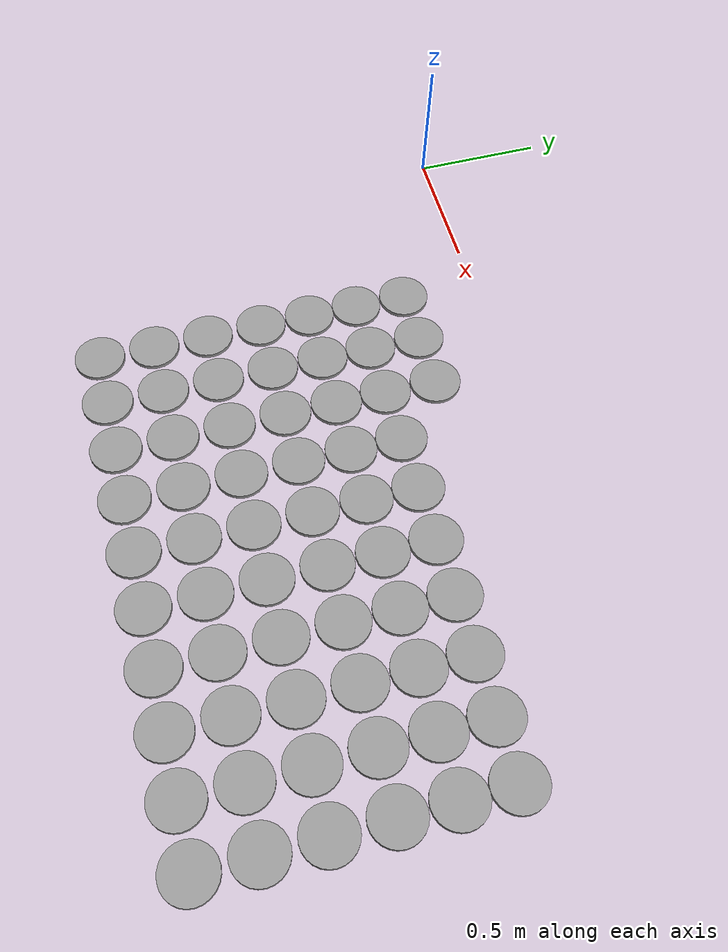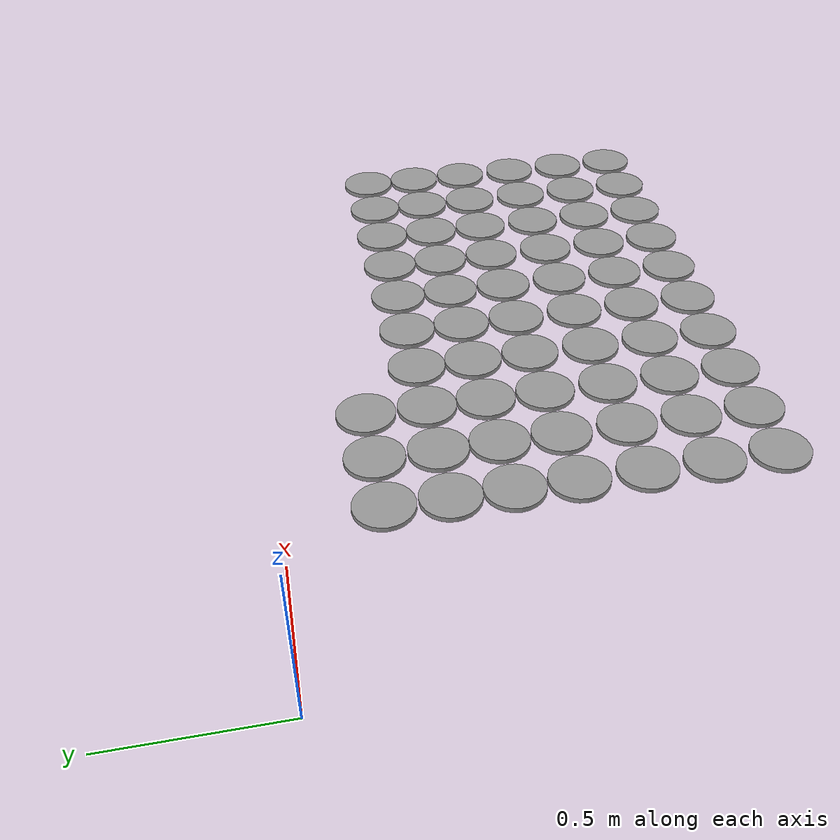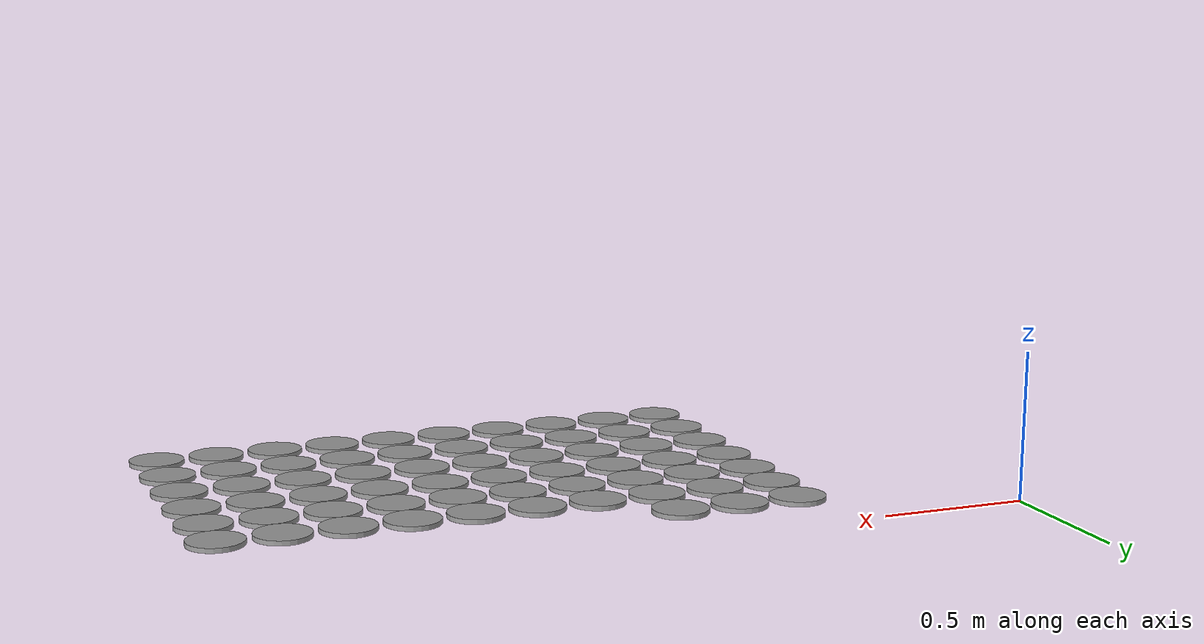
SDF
<sdf version="1.6">
 <world name="default">
  <model name="unit_cylinder_clone_385">
   <pose>0.67 -0.484923 0.008111 0 -0 0</pose>
   <link name="link">
    <inertial>
     <mass>1</mass>
     <inertia><ixx>0.145833</ixx><ixy>0</ixy><ixz>0</ixz><iyy>0.145833</iyy><iyz>0</iyz><izz>0.125</izz></inertia>
    </inertial>
    <collision name="collision">
     <geometry><cylinder><radius>0.0950718</radius><length>0.0162339</length></cylinder></geometry>
     <max_contacts>5</max_contacts>
    </collision>
    <visual name="visual">
     <geometry><cylinder><radius>0.0950718</radius><length>0.0162339</length></cylinder></geometry>
     <material>
      <script><name>Gazebo/Grey</name><uri>file://media/materials/scripts/gazebo.material</uri></script>
     </material>
    </visual>
   </link>
  </model>
  <model name="unit_cylinder_clone_386">
   <pose>0.67 -0.29 0.008111 0 -0 0</pose>
   <link name="link">
    <inertial>
     <mass>1</mass>
     <inertia><ixx>0.145833</ixx><ixy>0</ixy><ixz>0</ixz><iyy>0.145833</iyy><iyz>0</iyz><izz>0.125</izz></inertia>
    </inertial>
    <collision name="collision">
     <geometry><cylinder><radius>0.0950718</radius><length>0.0162339</length></cylinder></geometry>
     <max_contacts>5</max_contacts>
    </collision>
    <visual name="visual">
     <geometry><cylinder><radius>0.0950718</radius><length>0.0162339</length></cylinder></geometry>
     <material>
      <script><name>Gazebo/Grey</name><uri>file://media/materials/scripts/gazebo.material</uri></script>
     </material>
    </visual>
   </link>
  </model>
  <model name="unit_cylinder_clone_390">
   <pose>0.88 -0.484923 0.008111 0 -0 0</pose>
   <link name="link">
    <inertial>
     <mass>1</mass>
     <inertia><ixx>0.145833</ixx><ixy>0</ixy><ixz>0</ixz><iyy>0.145833</iyy><iyz>0</iyz><izz>0.125</izz></inertia>
    </inertial>
    <collision name="collision">
     <geometry><cylinder><radius>0.0950718</radius><length>0.0162339</length></cylinder></geometry>
     <max_contacts>5</max_contacts>
    </collision>
    <visual name="visual">
     <geometry><cylinder><radius>0.0950718</radius><length>0.0162339</length></cylinder></geometry>
     <material>
      <script><name>Gazebo/Grey</name><uri>file://media/materials/scripts/gazebo.material</uri></script>
     </material>
    </visual>
   </link>
  </model>
  <model name="unit_cylinder_clone_391">
   <pose>0.88 -0.29 0.008111 0 -0 0</pose>
   <link name="link">
    <inertial>
     <mass>1</mass>
     <inertia><ixx>0.145833</ixx><ixy>0</ixy><ixz>0</ixz><iyy>0.145833</iyy><iyz>0</iyz><izz>0.125</izz></inertia>
    </inertial>
    <collision name="collision">
     <geometry><cylinder><radius>0.0950718</radius><length>0.0162339</length></cylinder></geometry>
     <max_contacts>5</max_contacts>
    </collision>
    <visual name="visual">
     <geometry><cylinder><radius>0.0950718</radius><length>0.0162339</length></cylinder></geometry>
     <material>
      <script><name>Gazebo/Grey</name><uri>file://media/materials/scripts/gazebo.material</uri></script>
     </material>
    </visual>
   </link>
  </model>
  <model name="unit_cylinder_clone_395">
   <pose>1.09 -0.484923 0.008111 0 -0 0</pose>
   <link name="link">
    <inertial>
     <mass>1</mass>
     <inertia><ixx>0.145833</ixx><ixy>0</ixy><ixz>0</ixz><iyy>0.145833</iyy><iyz>0</iyz><izz>0.125</izz></inertia>
    </inertial>
    <collision name="collision">
     <geometry><cylinder><radius>0.0950718</radius><length>0.0162339</length></cylinder></geometry>
     <max_contacts>5</max_contacts>
    </collision>
    <visual name="visual">
     <geometry><cylinder><radius>0.0950718</radius><length>0.0162339</length></cylinder></geometry>
     <material>
      <script><name>Gazebo/Grey</name><uri>file://media/materials/scripts/gazebo.material</uri></script>
     </material>
    </visual>
   </link>
  </model>
  <model name="unit_cylinder_clone_396">
   <pose>1.09 -0.29 0.008111 0 -0 0</pose>
   <link name="link">
    <inertial>
     <mass>1</mass>
     <inertia><ixx>0.145833</ixx><ixy>0</ixy><ixz>0</ixz><iyy>0.145833</iyy><iyz>0</iyz><izz>0.125</izz></inertia>
    </inertial>
    <collision name="collision">
     <geometry><cylinder><radius>0.0950718</radius><length>0.0162339</length></cylinder></geometry>
     <max_contacts>5</max_contacts>
    </collision>
    <visual name="visual">
     <geometry><cylinder><radius>0.0950718</radius><length>0.0162339</length></cylinder></geometry>
     <material>
      <script><name>Gazebo/Grey</name><uri>file://media/materials/scripts/gazebo.material</uri></script>
     </material>
    </visual>
   </link>
  </model>
  <model name="unit_cylinder_clone_400">
   <pose>1.3 -0.484923 0.008111 0 -0 0</pose>
   <link name="link">
    <inertial>
     <mass>1</mass>
     <inertia><ixx>0.145833</ixx><ixy>0</ixy><ixz>0</ixz><iyy>0.145833</iyy><iyz>0</iyz><izz>0.125</izz></inertia>
    </inertial>
    <collision name="collision">
     <geometry><cylinder><radius>0.0950718</radius><length>0.0162339</length></cylinder></geometry>
     <max_contacts>5</max_contacts>
    </collision>
    <visual name="visual">
     <geometry><cylinder><radius>0.0950718</radius><length>0.0162339</length></cylinder></geometry>
     <material>
      <script><name>Gazebo/Grey</name><uri>file://media/materials/scripts/gazebo.material</uri></script>
     </material>
    </visual>
   </link>
  </model>
  <model name="unit_cylinder_clone_405">
   <pose>1.51 -0.484923 0.008111 0 -0 0</pose>
   <link name="link">
    <inertial>
     <mass>1</mass>
     <inertia><ixx>0.145833</ixx><ixy>0</ixy><ixz>0</ixz><iyy>0.145833</iyy><iyz>0</iyz><izz>0.125</izz></inertia>
    </inertial>
    <collision name="collision">
     <geometry><cylinder><radius>0.0950718</radius><length>0.0162339</length></cylinder></geometry>
     <max_contacts>5</max_contacts>
    </collision>
    <visual name="visual">
     <geometry><cylinder><radius>0.0950718</radius><length>0.0162339</length></cylinder></geometry>
     <material>
      <script><name>Gazebo/Grey</name><uri>file://media/materials/scripts/gazebo.material</uri></script>
     </material>
    </visual>
   </link>
  </model>
  <model name="unit_cylinder_clone_410">
   <pose>1.72 -0.484923 0.008111 0 -0 0</pose>
   <link name="link">
    <inertial>
     <mass>1</mass>
     <inertia><ixx>0.145833</ixx><ixy>0</ixy><ixz>0</ixz><iyy>0.145833</iyy><iyz>0</iyz><izz>0.125</izz></inertia>
    </inertial>
    <collision name="collision">
     <geometry><cylinder><radius>0.0950718</radius><length>0.0162339</length></cylinder></geometry>
     <max_contacts>5</max_contacts>
    </collision>
    <visual name="visual">
     <geometry><cylinder><radius>0.0950718</radius><length>0.0162339</length></cylinder></geometry>
     <material>
      <script><name>Gazebo/Grey</name><uri>file://media/materials/scripts/gazebo.material</uri></script>
     </material>
    </visual>
   </link>
  </model>
  <model name="unit_cylinder_clone_415">
   <pose>1.93 -0.484923 0.008111 0 -0 0</pose>
   <link name="link">
    <inertial>
     <mass>1</mass>
     <inertia><ixx>0.145833</ixx><ixy>0</ixy><ixz>0</ixz><iyy>0.145833</iyy><iyz>0</iyz><izz>0.125</izz></inertia>
    </inertial>
    <collision name="collision">
     <geometry><cylinder><radius>0.0950718</radius><length>0.0162339</length></cylinder></geometry>
     <max_contacts>5</max_contacts>
    </collision>
    <visual name="visual">
     <geometry><cylinder><radius>0.0950718</radius><length>0.0162339</length></cylinder></geometry>
     <material>
      <script><name>Gazebo/Grey</name><uri>file://media/materials/scripts/gazebo.material</uri></script>
     </material>
    </visual>
   </link>
  </model>
  <model name="unit_cylinder_clone_420">
   <pose>2.14 -0.484923 0.008111 0 -0 0</pose>
   <link name="link">
    <inertial>
     <mass>1</mass>
     <inertia><ixx>0.145833</ixx><ixy>0</ixy><ixz>0</ixz><iyy>0.145833</iyy><iyz>0</iyz><izz>0.125</izz></inertia>
    </inertial>
    <collision name="collision">
     <geometry><cylinder><radius>0.0950718</radius><length>0.0162339</length></cylinder></geometry>
     <max_contacts>5</max_contacts>
    </collision>
    <visual name="visual">
     <geometry><cylinder><radius>0.0950718</radius><length>0.0162339</length></cylinder></geometry>
     <material>
      <script><name>Gazebo/Grey</name><uri>file://media/materials/scripts/gazebo.material</uri></script>
     </material>
    </visual>
   </link>
  </model>
  <model name="unit_cylinder_clone_425">
   <pose>2.35 -0.484923 0.008111 0 -0 0</pose>
   <link name="link">
    <inertial>
     <mass>1</mass>
     <inertia><ixx>0.145833</ixx><ixy>0</ixy><ixz>0</ixz><iyy>0.145833</iyy><iyz>0</iyz><izz>0.125</izz></inertia>
    </inertial>
    <collision name="collision">
     <geometry><cylinder><radius>0.0950718</radius><length>0.0162339</length></cylinder></geometry>
     <max_contacts>5</max_contacts>
    </collision>
    <visual name="visual">
     <geometry><cylinder><radius>0.0950718</radius><length>0.0162339</length></cylinder></geometry>
     <material>
      <script><name>Gazebo/Grey</name><uri>file://media/materials/scripts/gazebo.material</uri></script>
     </material>
    </visual>
   </link>
  </model>
  <model name="unit_cylinder_clone_430">
   <pose>2.56 -0.484923 0.008111 0 -0 0</pose>
   <link name="link">
    <inertial>
     <mass>1</mass>
     <inertia><ixx>0.145833</ixx><ixy>0</ixy><ixz>0</ixz><iyy>0.145833</iyy><iyz>0</iyz><izz>0.125</izz></inertia>
    </inertial>
    <collision name="collision">
     <geometry><cylinder><radius>0.0950718</radius><length>0.0162339</length></cylinder></geometry>
     <max_contacts>5</max_contacts>
    </collision>
    <visual name="visual">
     <geometry><cylinder><radius>0.0950718</radius><length>0.0162339</length></cylinder></geometry>
     <material>
      <script><name>Gazebo/Grey</name><uri>file://media/materials/scripts/gazebo.material</uri></script>
     </material>
    </visual>
   </link>
  </model>
  <model name="unit_cylinder_clone_635">
   <pose>0.67 -1.5 0.008111 0 -0 0</pose>
   <link name="link">
    <inertial>
     <mass>1</mass>
     <inertia><ixx>0.145833</ixx><ixy>0</ixy><ixz>0</ixz><iyy>0.145833</iyy><iyz>0</iyz><izz>0.125</izz></inertia>
    </inertial>
    <collision name="collision">
     <geometry><cylinder><radius>0.0950718</radius><length>0.0162339</length></cylinder></geometry>
     <max_contacts>5</max_contacts>
    </collision>
    <visual name="visual">
     <geometry><cylinder><radius>0.0950718</radius><length>0.0162339</length></cylinder></geometry>
     <material>
      <script><name>Gazebo/Grey</name><uri>file://media/materials/scripts/gazebo.material</uri></script>
     </material>
    </visual>
   </link>
  </model>
  <model name="unit_cylinder_clone_636">
   <pose>0.67 -1.29 0.008111 0 -0 0</pose>
   <link name="link">
    <inertial>
     <mass>1</mass>
     <inertia><ixx>0.145833</ixx><ixy>0</ixy><ixz>0</ixz><iyy>0.145833</iyy><iyz>0</iyz><izz>0.125</izz></inertia>
    </inertial>
    <collision name="collision">
     <geometry><cylinder><radius>0.0950718</radius><length>0.0162339</length></cylinder></geometry>
     <max_contacts>5</max_contacts>
    </collision>
    <visual name="visual">
     <geometry><cylinder><radius>0.0950718</radius><length>0.0162339</length></cylinder></geometry>
     <material>
      <script><name>Gazebo/Grey</name><uri>file://media/materials/scripts/gazebo.material</uri></script>
     </material>
    </visual>
   </link>
  </model>
  <model name="unit_cylinder_clone_637">
   <pose>0.67 -1.08 0.008111 0 -0 0</pose>
   <link name="link">
    <inertial>
     <mass>1</mass>
     <inertia><ixx>0.145833</ixx><ixy>0</ixy><ixz>0</ixz><iyy>0.145833</iyy><iyz>0</iyz><izz>0.125</izz></inertia>
    </inertial>
    <collision name="collision">
     <geometry><cylinder><radius>0.0950718</radius><length>0.0162339</length></cylinder></geometry>
     <max_contacts>5</max_contacts>
    </collision>
    <visual name="visual">
     <geometry><cylinder><radius>0.0950718</radius><length>0.0162339</length></cylinder></geometry>
     <material>
      <script><name>Gazebo/Grey</name><uri>file://media/materials/scripts/gazebo.material</uri></script>
     </material>
    </visual>
   </link>
  </model>
  <model name="unit_cylinder_clone_638">
   <pose>0.67 -0.87 0.008111 0 -0 0</pose>
   <link name="link">
    <inertial>
     <mass>1</mass>
     <inertia><ixx>0.145833</ixx><ixy>0</ixy><ixz>0</ixz><iyy>0.145833</iyy><iyz>0</iyz><izz>0.125</izz></inertia>
    </inertial>
    <collision name="collision">
     <geometry><cylinder><radius>0.0950718</radius><length>0.0162339</length></cylinder></geometry>
     <max_contacts>5</max_contacts>
    </collision>
    <visual name="visual">
     <geometry><cylinder><radius>0.0950718</radius><length>0.0162339</length></cylinder></geometry>
     <material>
      <script><name>Gazebo/Grey</name><uri>file://media/materials/scripts/gazebo.material</uri></script>
     </material>
    </visual>
   </link>
  </model>
  <model name="unit_cylinder_clone_639">
   <pose>0.67 -0.675077 0.008111 0 -0 0</pose>
   <link name="link">
    <inertial>
     <mass>1</mass>
     <inertia><ixx>0.145833</ixx><ixy>0</ixy><ixz>0</ixz><iyy>0.145833</iyy><iyz>0</iyz><izz>0.125</izz></inertia>
    </inertial>
    <collision name="collision">
     <geometry><cylinder><radius>0.0950718</radius><length>0.0162339</length></cylinder></geometry>
     <max_contacts>5</max_contacts>
    </collision>
    <visual name="visual">
     <geometry><cylinder><radius>0.0950718</radius><length>0.0162339</length></cylinder></geometry>
     <material>
      <script><name>Gazebo/Grey</name><uri>file://media/materials/scripts/gazebo.material</uri></script>
     </material>
    </visual>
   </link>
  </model>
  <model name="unit_cylinder_clone_640">
   <pose>0.88 -1.5 0.008111 0 -0 0</pose>
   <link name="link">
    <inertial>
     <mass>1</mass>
     <inertia><ixx>0.145833</ixx><ixy>0</ixy><ixz>0</ixz><iyy>0.145833</iyy><iyz>0</iyz><izz>0.125</izz></inertia>
    </inertial>
    <collision name="collision">
     <geometry><cylinder><radius>0.0950718</radius><length>0.0162339</length></cylinder></geometry>
     <max_contacts>5</max_contacts>
    </collision>
    <visual name="visual">
     <geometry><cylinder><radius>0.0950718</radius><length>0.0162339</length></cylinder></geometry>
     <material>
      <script><name>Gazebo/Grey</name><uri>file://media/materials/scripts/gazebo.material</uri></script>
     </material>
    </visual>
   </link>
  </model>
  <model name="unit_cylinder_clone_641">
   <pose>0.88 -1.29 0.008111 0 -0 0</pose>
   <link name="link">
    <inertial>
     <mass>1</mass>
     <inertia><ixx>0.145833</ixx><ixy>0</ixy><ixz>0</ixz><iyy>0.145833</iyy><iyz>0</iyz><izz>0.125</izz></inertia>
    </inertial>
    <collision name="collision">
     <geometry><cylinder><radius>0.0950718</radius><length>0.0162339</length></cylinder></geometry>
     <max_contacts>5</max_contacts>
    </collision>
    <visual name="visual">
     <geometry><cylinder><radius>0.0950718</radius><length>0.0162339</length></cylinder></geometry>
     <material>
      <script><name>Gazebo/Grey</name><uri>file://media/materials/scripts/gazebo.material</uri></script>
     </material>
    </visual>
   </link>
  </model>
  <model name="unit_cylinder_clone_642">
   <pose>0.88 -1.08 0.008111 0 -0 0</pose>
   <link name="link">
    <inertial>
     <mass>1</mass>
     <inertia><ixx>0.145833</ixx><ixy>0</ixy><ixz>0</ixz><iyy>0.145833</iyy><iyz>0</iyz><izz>0.125</izz></inertia>
    </inertial>
    <collision name="collision">
     <geometry><cylinder><radius>0.0950718</radius><length>0.0162339</length></cylinder></geometry>
     <max_contacts>5</max_contacts>
    </collision>
    <visual name="visual">
     <geometry><cylinder><radius>0.0950718</radius><length>0.0162339</length></cylinder></geometry>
     <material>
      <script><name>Gazebo/Grey</name><uri>file://media/materials/scripts/gazebo.material</uri></script>
     </material>
    </visual>
   </link>
  </model>
  <model name="unit_cylinder_clone_643">
   <pose>0.88 -0.87 0.008111 0 -0 0</pose>
   <link name="link">
    <inertial>
     <mass>1</mass>
     <inertia><ixx>0.145833</ixx><ixy>0</ixy><ixz>0</ixz><iyy>0.145833</iyy><iyz>0</iyz><izz>0.125</izz></inertia>
    </inertial>
    <collision name="collision">
     <geometry><cylinder><radius>0.0950718</radius><length>0.0162339</length></cylinder></geometry>
     <max_contacts>5</max_contacts>
    </collision>
    <visual name="visual">
     <geometry><cylinder><radius>0.0950718</radius><length>0.0162339</length></cylinder></geometry>
     <material>
      <script><name>Gazebo/Grey</name><uri>file://media/materials/scripts/gazebo.material</uri></script>
     </material>
    </visual>
   </link>
  </model>
  <model name="unit_cylinder_clone_644">
   <pose>0.88 -0.675077 0.008111 0 -0 0</pose>
   <link name="link">
    <inertial>
     <mass>1</mass>
     <inertia><ixx>0.145833</ixx><ixy>0</ixy><ixz>0</ixz><iyy>0.145833</iyy><iyz>0</iyz><izz>0.125</izz></inertia>
    </inertial>
    <collision name="collision">
     <geometry><cylinder><radius>0.0950718</radius><length>0.0162339</length></cylinder></geometry>
     <max_contacts>5</max_contacts>
    </collision>
    <visual name="visual">
     <geometry><cylinder><radius>0.0950718</radius><length>0.0162339</length></cylinder></geometry>
     <material>
      <script><name>Gazebo/Grey</name><uri>file://media/materials/scripts/gazebo.material</uri></script>
     </material>
    </visual>
   </link>
  </model>
  <model name="unit_cylinder_clone_645">
   <pose>1.09 -1.5 0.008111 0 -0 0</pose>
   <link name="link">
    <inertial>
     <mass>1</mass>
     <inertia><ixx>0.145833</ixx><ixy>0</ixy><ixz>0</ixz><iyy>0.145833</iyy><iyz>0</iyz><izz>0.125</izz></inertia>
    </inertial>
    <collision name="collision">
     <geometry><cylinder><radius>0.0950718</radius><length>0.0162339</length></cylinder></geometry>
     <max_contacts>5</max_contacts>
    </collision>
    <visual name="visual">
     <geometry><cylinder><radius>0.0950718</radius><length>0.0162339</length></cylinder></geometry>
     <material>
      <script><name>Gazebo/Grey</name><uri>file://media/materials/scripts/gazebo.material</uri></script>
     </material>
    </visual>
   </link>
  </model>
  <model name="unit_cylinder_clone_646">
   <pose>1.09 -1.29 0.008111 0 -0 0</pose>
   <link name="link">
    <inertial>
     <mass>1</mass>
     <inertia><ixx>0.145833</ixx><ixy>0</ixy><ixz>0</ixz><iyy>0.145833</iyy><iyz>0</iyz><izz>0.125</izz></inertia>
    </inertial>
    <collision name="collision">
     <geometry><cylinder><radius>0.0950718</radius><length>0.0162339</length></cylinder></geometry>
     <max_contacts>5</max_contacts>
    </collision>
    <visual name="visual">
     <geometry><cylinder><radius>0.0950718</radius><length>0.0162339</length></cylinder></geometry>
     <material>
      <script><name>Gazebo/Grey</name><uri>file://media/materials/scripts/gazebo.material</uri></script>
     </material>
    </visual>
   </link>
  </model>
  <model name="unit_cylinder_clone_647">
   <pose>1.09 -1.08 0.008111 0 -0 0</pose>
   <link name="link">
    <inertial>
     <mass>1</mass>
     <inertia><ixx>0.145833</ixx><ixy>0</ixy><ixz>0</ixz><iyy>0.145833</iyy><iyz>0</iyz><izz>0.125</izz></inertia>
    </inertial>
    <collision name="collision">
     <geometry><cylinder><radius>0.0950718</radius><length>0.0162339</length></cylinder></geometry>
     <max_contacts>5</max_contacts>
    </collision>
    <visual name="visual">
     <geometry><cylinder><radius>0.0950718</radius><length>0.0162339</length></cylinder></geometry>
     <material>
      <script><name>Gazebo/Grey</name><uri>file://media/materials/scripts/gazebo.material</uri></script>
     </material>
    </visual>
   </link>
  </model>
  <model name="unit_cylinder_clone_648">
   <pose>1.09 -0.87 0.008111 0 -0 0</pose>
   <link name="link">
    <inertial>
     <mass>1</mass>
     <inertia><ixx>0.145833</ixx><ixy>0</ixy><ixz>0</ixz><iyy>0.145833</iyy><iyz>0</iyz><izz>0.125</izz></inertia>
    </inertial>
    <collision name="collision">
     <geometry><cylinder><radius>0.0950718</radius><length>0.0162339</length></cylinder></geometry>
     <max_contacts>5</max_contacts>
    </collision>
    <visual name="visual">
     <geometry><cylinder><radius>0.0950718</radius><length>0.0162339</length></cylinder></geometry>
     <material>
      <script><name>Gazebo/Grey</name><uri>file://media/materials/scripts/gazebo.material</uri></script>
     </material>
    </visual>
   </link>
  </model>
  <model name="unit_cylinder_clone_649">
   <pose>1.09 -0.675077 0.008111 0 -0 0</pose>
   <link name="link">
    <inertial>
     <mass>1</mass>
     <inertia><ixx>0.145833</ixx><ixy>0</ixy><ixz>0</ixz><iyy>0.145833</iyy><iyz>0</iyz><izz>0.125</izz></inertia>
    </inertial>
    <collision name="collision">
     <geometry><cylinder><radius>0.0950718</radius><length>0.0162339</length></cylinder></geometry>
     <max_contacts>5</max_contacts>
    </collision>
    <visual name="visual">
     <geometry><cylinder><radius>0.0950718</radius><length>0.0162339</length></cylinder></geometry>
     <material>
      <script><name>Gazebo/Grey</name><uri>file://media/materials/scripts/gazebo.material</uri></script>
     </material>
    </visual>
   </link>
  </model>
  <model name="unit_cylinder_clone_650">
   <pose>1.3 -1.5 0.008111 0 -0 0</pose>
   <link name="link">
    <inertial>
     <mass>1</mass>
     <inertia><ixx>0.145833</ixx><ixy>0</ixy><ixz>0</ixz><iyy>0.145833</iyy><iyz>0</iyz><izz>0.125</izz></inertia>
    </inertial>
    <collision name="collision">
     <geometry><cylinder><radius>0.0950718</radius><length>0.0162339</length></cylinder></geometry>
     <max_contacts>5</max_contacts>
    </collision>
    <visual name="visual">
     <geometry><cylinder><radius>0.0950718</radius><length>0.0162339</length></cylinder></geometry>
     <material>
      <script><name>Gazebo/Grey</name><uri>file://media/materials/scripts/gazebo.material</uri></script>
     </material>
    </visual>
   </link>
  </model>
  <model name="unit_cylinder_clone_651">
   <pose>1.3 -1.29 0.008111 0 -0 0</pose>
   <link name="link">
    <inertial>
     <mass>1</mass>
     <inertia><ixx>0.145833</ixx><ixy>0</ixy><ixz>0</ixz><iyy>0.145833</iyy><iyz>0</iyz><izz>0.125</izz></inertia>
    </inertial>
    <collision name="collision">
     <geometry><cylinder><radius>0.0950718</radius><length>0.0162339</length></cylinder></geometry>
     <max_contacts>5</max_contacts>
    </collision>
    <visual name="visual">
     <geometry><cylinder><radius>0.0950718</radius><length>0.0162339</length></cylinder></geometry>
     <material>
      <script><name>Gazebo/Grey</name><uri>file://media/materials/scripts/gazebo.material</uri></script>
     </material>
    </visual>
   </link>
  </model>
  <model name="unit_cylinder_clone_652">
   <pose>1.3 -1.08 0.008111 0 -0 0</pose>
   <link name="link">
    <inertial>
     <mass>1</mass>
     <inertia><ixx>0.145833</ixx><ixy>0</ixy><ixz>0</ixz><iyy>0.145833</iyy><iyz>0</iyz><izz>0.125</izz></inertia>
    </inertial>
    <collision name="collision">
     <geometry><cylinder><radius>0.0950718</radius><length>0.0162339</length></cylinder></geometry>
     <max_contacts>5</max_contacts>
    </collision>
    <visual name="visual">
     <geometry><cylinder><radius>0.0950718</radius><length>0.0162339</length></cylinder></geometry>
     <material>
      <script><name>Gazebo/Grey</name><uri>file://media/materials/scripts/gazebo.material</uri></script>
     </material>
    </visual>
   </link>
  </model>
  <model name="unit_cylinder_clone_653">
   <pose>1.3 -0.87 0.008111 0 -0 0</pose>
   <link name="link">
    <inertial>
     <mass>1</mass>
     <inertia><ixx>0.145833</ixx><ixy>0</ixy><ixz>0</ixz><iyy>0.145833</iyy><iyz>0</iyz><izz>0.125</izz></inertia>
    </inertial>
    <collision name="collision">
     <geometry><cylinder><radius>0.0950718</radius><length>0.0162339</length></cylinder></geometry>
     <max_contacts>5</max_contacts>
    </collision>
    <visual name="visual">
     <geometry><cylinder><radius>0.0950718</radius><length>0.0162339</length></cylinder></geometry>
     <material>
      <script><name>Gazebo/Grey</name><uri>file://media/materials/scripts/gazebo.material</uri></script>
     </material>
    </visual>
   </link>
  </model>
  <model name="unit_cylinder_clone_654">
   <pose>1.3 -0.675077 0.008111 0 -0 0</pose>
   <link name="link">
    <inertial>
     <mass>1</mass>
     <inertia><ixx>0.145833</ixx><ixy>0</ixy><ixz>0</ixz><iyy>0.145833</iyy><iyz>0</iyz><izz>0.125</izz></inertia>
    </inertial>
    <collision name="collision">
     <geometry><cylinder><radius>0.0950718</radius><length>0.0162339</length></cylinder></geometry>
     <max_contacts>5</max_contacts>
    </collision>
    <visual name="visual">
     <geometry><cylinder><radius>0.0950718</radius><length>0.0162339</length></cylinder></geometry>
     <material>
      <script><name>Gazebo/Grey</name><uri>file://media/materials/scripts/gazebo.material</uri></script>
     </material>
    </visual>
   </link>
  </model>
  <model name="unit_cylinder_clone_655">
   <pose>1.51 -1.5 0.008111 0 -0 0</pose>
   <link name="link">
    <inertial>
     <mass>1</mass>
     <inertia><ixx>0.145833</ixx><ixy>0</ixy><ixz>0</ixz><iyy>0.145833</iyy><iyz>0</iyz><izz>0.125</izz></inertia>
    </inertial>
    <collision name="collision">
     <geometry><cylinder><radius>0.0950718</radius><length>0.0162339</length></cylinder></geometry>
     <max_contacts>5</max_contacts>
    </collision>
    <visual name="visual">
     <geometry><cylinder><radius>0.0950718</radius><length>0.0162339</length></cylinder></geometry>
     <material>
      <script><name>Gazebo/Grey</name><uri>file://media/materials/scripts/gazebo.material</uri></script>
     </material>
    </visual>
   </link>
  </model>
  <model name="unit_cylinder_clone_656">
   <pose>1.51 -1.29 0.008111 0 -0 0</pose>
   <link name="link">
    <inertial>
     <mass>1</mass>
     <inertia><ixx>0.145833</ixx><ixy>0</ixy><ixz>0</ixz><iyy>0.145833</iyy><iyz>0</iyz><izz>0.125</izz></inertia>
    </inertial>
    <collision name="collision">
     <geometry><cylinder><radius>0.0950718</radius><length>0.0162339</length></cylinder></geometry>
     <max_contacts>5</max_contacts>
    </collision>
    <visual name="visual">
     <geometry><cylinder><radius>0.0950718</radius><length>0.0162339</length></cylinder></geometry>
     <material>
      <script><name>Gazebo/Grey</name><uri>file://media/materials/scripts/gazebo.material</uri></script>
     </material>
    </visual>
   </link>
  </model>
  <model name="unit_cylinder_clone_657">
   <pose>1.51 -1.08 0.008111 0 -0 0</pose>
   <link name="link">
    <inertial>
     <mass>1</mass>
     <inertia><ixx>0.145833</ixx><ixy>0</ixy><ixz>0</ixz><iyy>0.145833</iyy><iyz>0</iyz><izz>0.125</izz></inertia>
    </inertial>
    <collision name="collision">
     <geometry><cylinder><radius>0.0950718</radius><length>0.0162339</length></cylinder></geometry>
     <max_contacts>5</max_contacts>
    </collision>
    <visual name="visual">
     <geometry><cylinder><radius>0.0950718</radius><length>0.0162339</length></cylinder></geometry>
     <material>
      <script><name>Gazebo/Grey</name><uri>file://media/materials/scripts/gazebo.material</uri></script>
     </material>
    </visual>
   </link>
  </model>
  <model name="unit_cylinder_clone_658">
   <pose>1.51 -0.87 0.008111 0 -0 0</pose>
   <link name="link">
    <inertial>
     <mass>1</mass>
     <inertia><ixx>0.145833</ixx><ixy>0</ixy><ixz>0</ixz><iyy>0.145833</iyy><iyz>0</iyz><izz>0.125</izz></inertia>
    </inertial>
    <collision name="collision">
     <geometry><cylinder><radius>0.0950718</radius><length>0.0162339</length></cylinder></geometry>
     <max_contacts>5</max_contacts>
    </collision>
    <visual name="visual">
     <geometry><cylinder><radius>0.0950718</radius><length>0.0162339</length></cylinder></geometry>
     <material>
      <script><name>Gazebo/Grey</name><uri>file://media/materials/scripts/gazebo.material</uri></script>
     </material>
    </visual>
   </link>
  </model>
  <model name="unit_cylinder_clone_659">
   <pose>1.51 -0.675077 0.008111 0 -0 0</pose>
   <link name="link">
    <inertial>
     <mass>1</mass>
     <inertia><ixx>0.145833</ixx><ixy>0</ixy><ixz>0</ixz><iyy>0.145833</iyy><iyz>0</iyz><izz>0.125</izz></inertia>
    </inertial>
    <collision name="collision">
     <geometry><cylinder><radius>0.0950718</radius><length>0.0162339</length></cylinder></geometry>
     <max_contacts>5</max_contacts>
    </collision>
    <visual name="visual">
     <geometry><cylinder><radius>0.0950718</radius><length>0.0162339</length></cylinder></geometry>
     <material>
      <script><name>Gazebo/Grey</name><uri>file://media/materials/scripts/gazebo.material</uri></script>
     </material>
    </visual>
   </link>
  </model>
  <model name="unit_cylinder_clone_660">
   <pose>1.72 -1.5 0.008111 0 -0 0</pose>
   <link name="link">
    <inertial>
     <mass>1</mass>
     <inertia><ixx>0.145833</ixx><ixy>0</ixy><ixz>0</ixz><iyy>0.145833</iyy><iyz>0</iyz><izz>0.125</izz></inertia>
    </inertial>
    <collision name="collision">
     <geometry><cylinder><radius>0.0950718</radius><length>0.0162339</length></cylinder></geometry>
     <max_contacts>5</max_contacts>
    </collision>
    <visual name="visual">
     <geometry><cylinder><radius>0.0950718</radius><length>0.0162339</length></cylinder></geometry>
     <material>
      <script><name>Gazebo/Grey</name><uri>file://media/materials/scripts/gazebo.material</uri></script>
     </material>
    </visual>
   </link>
  </model>
  <model name="unit_cylinder_clone_661">
   <pose>1.72 -1.29 0.008111 0 -0 0</pose>
   <link name="link">
    <inertial>
     <mass>1</mass>
     <inertia><ixx>0.145833</ixx><ixy>0</ixy><ixz>0</ixz><iyy>0.145833</iyy><iyz>0</iyz><izz>0.125</izz></inertia>
    </inertial>
    <collision name="collision">
     <geometry><cylinder><radius>0.0950718</radius><length>0.0162339</length></cylinder></geometry>
     <max_contacts>5</max_contacts>
    </collision>
    <visual name="visual">
     <geometry><cylinder><radius>0.0950718</radius><length>0.0162339</length></cylinder></geometry>
     <material>
      <script><name>Gazebo/Grey</name><uri>file://media/materials/scripts/gazebo.material</uri></script>
     </material>
    </visual>
   </link>
  </model>
  <model name="unit_cylinder_clone_662">
   <pose>1.72 -1.08 0.008111 0 -0 0</pose>
   <link name="link">
    <inertial>
     <mass>1</mass>
     <inertia><ixx>0.145833</ixx><ixy>0</ixy><ixz>0</ixz><iyy>0.145833</iyy><iyz>0</iyz><izz>0.125</izz></inertia>
    </inertial>
    <collision name="collision">
     <geometry><cylinder><radius>0.0950718</radius><length>0.0162339</length></cylinder></geometry>
     <max_contacts>5</max_contacts>
    </collision>
    <visual name="visual">
     <geometry><cylinder><radius>0.0950718</radius><length>0.0162339</length></cylinder></geometry>
     <material>
      <script><name>Gazebo/Grey</name><uri>file://media/materials/scripts/gazebo.material</uri></script>
     </material>
    </visual>
   </link>
  </model>
  <model name="unit_cylinder_clone_663">
   <pose>1.72 -0.87 0.008111 0 -0 0</pose>
   <link name="link">
    <inertial>
     <mass>1</mass>
     <inertia><ixx>0.145833</ixx><ixy>0</ixy><ixz>0</ixz><iyy>0.145833</iyy><iyz>0</iyz><izz>0.125</izz></inertia>
    </inertial>
    <collision name="collision">
     <geometry><cylinder><radius>0.0950718</radius><length>0.0162339</length></cylinder></geometry>
     <max_contacts>5</max_contacts>
    </collision>
    <visual name="visual">
     <geometry><cylinder><radius>0.0950718</radius><length>0.0162339</length></cylinder></geometry>
     <material>
      <script><name>Gazebo/Grey</name><uri>file://media/materials/scripts/gazebo.material</uri></script>
     </material>
    </visual>
   </link>
  </model>
  <model name="unit_cylinder_clone_664">
   <pose>1.72 -0.675077 0.008111 0 -0 0</pose>
   <link name="link">
    <inertial>
     <mass>1</mass>
     <inertia><ixx>0.145833</ixx><ixy>0</ixy><ixz>0</ixz><iyy>0.145833</iyy><iyz>0</iyz><izz>0.125</izz></inertia>
    </inertial>
    <collision name="collision">
     <geometry><cylinder><radius>0.0950718</radius><length>0.0162339</length></cylinder></geometry>
     <max_contacts>5</max_contacts>
    </collision>
    <visual name="visual">
     <geometry><cylinder><radius>0.0950718</radius><length>0.0162339</length></cylinder></geometry>
     <material>
      <script><name>Gazebo/Grey</name><uri>file://media/materials/scripts/gazebo.material</uri></script>
     </material>
    </visual>
   </link>
  </model>
  <model name="unit_cylinder_clone_665">
   <pose>1.93 -1.5 0.008111 0 -0 0</pose>
   <link name="link">
    <inertial>
     <mass>1</mass>
     <inertia><ixx>0.145833</ixx><ixy>0</ixy><ixz>0</ixz><iyy>0.145833</iyy><iyz>0</iyz><izz>0.125</izz></inertia>
    </inertial>
    <collision name="collision">
     <geometry><cylinder><radius>0.0950718</radius><length>0.0162339</length></cylinder></geometry>
     <max_contacts>5</max_contacts>
    </collision>
    <visual name="visual">
     <geometry><cylinder><radius>0.0950718</radius><length>0.0162339</length></cylinder></geometry>
     <material>
      <script><name>Gazebo/Grey</name><uri>file://media/materials/scripts/gazebo.material</uri></script>
     </material>
    </visual>
   </link>
  </model>
  <model name="unit_cylinder_clone_666">
   <pose>1.93 -1.29 0.008111 0 -0 0</pose>
   <link name="link">
    <inertial>
     <mass>1</mass>
     <inertia><ixx>0.145833</ixx><ixy>0</ixy><ixz>0</ixz><iyy>0.145833</iyy><iyz>0</iyz><izz>0.125</izz></inertia>
    </inertial>
    <collision name="collision">
     <geometry><cylinder><radius>0.0950718</radius><length>0.0162339</length></cylinder></geometry>
     <max_contacts>5</max_contacts>
    </collision>
    <visual name="visual">
     <geometry><cylinder><radius>0.0950718</radius><length>0.0162339</length></cylinder></geometry>
     <material>
      <script><name>Gazebo/Grey</name><uri>file://media/materials/scripts/gazebo.material</uri></script>
     </material>
    </visual>
   </link>
  </model>
  <model name="unit_cylinder_clone_667">
   <pose>1.93 -1.08 0.008111 0 -0 0</pose>
   <link name="link">
    <inertial>
     <mass>1</mass>
     <inertia><ixx>0.145833</ixx><ixy>0</ixy><ixz>0</ixz><iyy>0.145833</iyy><iyz>0</iyz><izz>0.125</izz></inertia>
    </inertial>
    <collision name="collision">
     <geometry><cylinder><radius>0.0950718</radius><length>0.0162339</length></cylinder></geometry>
     <max_contacts>5</max_contacts>
    </collision>
    <visual name="visual">
     <geometry><cylinder><radius>0.0950718</radius><length>0.0162339</length></cylinder></geometry>
     <material>
      <script><name>Gazebo/Grey</name><uri>file://media/materials/scripts/gazebo.material</uri></script>
     </material>
    </visual>
   </link>
  </model>
  <model name="unit_cylinder_clone_668">
   <pose>1.93 -0.87 0.008111 0 -0 0</pose>
   <link name="link">
    <inertial>
     <mass>1</mass>
     <inertia><ixx>0.145833</ixx><ixy>0</ixy><ixz>0</ixz><iyy>0.145833</iyy><iyz>0</iyz><izz>0.125</izz></inertia>
    </inertial>
    <collision name="collision">
     <geometry><cylinder><radius>0.0950718</radius><length>0.0162339</length></cylinder></geometry>
     <max_contacts>5</max_contacts>
    </collision>
    <visual name="visual">
     <geometry><cylinder><radius>0.0950718</radius><length>0.0162339</length></cylinder></geometry>
     <material>
      <script><name>Gazebo/Grey</name><uri>file://media/materials/scripts/gazebo.material</uri></script>
     </material>
    </visual>
   </link>
  </model>
  <model name="unit_cylinder_clone_669">
   <pose>1.93 -0.675077 0.008111 0 -0 0</pose>
   <link name="link">
    <inertial>
     <mass>1</mass>
     <inertia><ixx>0.145833</ixx><ixy>0</ixy><ixz>0</ixz><iyy>0.145833</iyy><iyz>0</iyz><izz>0.125</izz></inertia>
    </inertial>
    <collision name="collision">
     <geometry><cylinder><radius>0.0950718</radius><length>0.0162339</length></cylinder></geometry>
     <max_contacts>5</max_contacts>
    </collision>
    <visual name="visual">
     <geometry><cylinder><radius>0.0950718</radius><length>0.0162339</length></cylinder></geometry>
     <material>
      <script><name>Gazebo/Grey</name><uri>file://media/materials/scripts/gazebo.material</uri></script>
     </material>
    </visual>
   </link>
  </model>
  <model name="unit_cylinder_clone_670">
   <pose>2.14 -1.5 0.008111 0 -0 0</pose>
   <link name="link">
    <inertial>
     <mass>1</mass>
     <inertia><ixx>0.145833</ixx><ixy>0</ixy><ixz>0</ixz><iyy>0.145833</iyy><iyz>0</iyz><izz>0.125</izz></inertia>
    </inertial>
    <collision name="collision">
     <geometry><cylinder><radius>0.0950718</radius><length>0.0162339</length></cylinder></geometry>
     <max_contacts>5</max_contacts>
    </collision>
    <visual name="visual">
     <geometry><cylinder><radius>0.0950718</radius><length>0.0162339</length></cylinder></geometry>
     <material>
      <script><name>Gazebo/Grey</name><uri>file://media/materials/scripts/gazebo.material</uri></script>
     </material>
    </visual>
   </link>
  </model>
  <model name="unit_cylinder_clone_671">
   <pose>2.14 -1.29 0.008111 0 -0 0</pose>
   <link name="link">
    <inertial>
     <mass>1</mass>
     <inertia><ixx>0.145833</ixx><ixy>0</ixy><ixz>0</ixz><iyy>0.145833</iyy><iyz>0</iyz><izz>0.125</izz></inertia>
    </inertial>
    <collision name="collision">
     <geometry><cylinder><radius>0.0950718</radius><length>0.0162339</length></cylinder></geometry>
     <max_contacts>5</max_contacts>
    </collision>
    <visual name="visual">
     <geometry><cylinder><radius>0.0950718</radius><length>0.0162339</length></cylinder></geometry>
     <material>
      <script><name>Gazebo/Grey</name><uri>file://media/materials/scripts/gazebo.material</uri></script>
     </material>
    </visual>
   </link>
  </model>
  <model name="unit_cylinder_clone_672">
   <pose>2.14 -1.08 0.008111 0 -0 0</pose>
   <link name="link">
    <inertial>
     <mass>1</mass>
     <inertia><ixx>0.145833</ixx><ixy>0</ixy><ixz>0</ixz><iyy>0.145833</iyy><iyz>0</iyz><izz>0.125</izz></inertia>
    </inertial>
    <collision name="collision">
     <geometry><cylinder><radius>0.0950718</radius><length>0.0162339</length></cylinder></geometry>
     <max_contacts>5</max_contacts>
    </collision>
    <visual name="visual">
     <geometry><cylinder><radius>0.0950718</radius><length>0.0162339</length></cylinder></geometry>
     <material>
      <script><name>Gazebo/Grey</name><uri>file://media/materials/scripts/gazebo.material</uri></script>
     </material>
    </visual>
   </link>
  </model>
  <model name="unit_cylinder_clone_673">
   <pose>2.14 -0.87 0.008111 0 -0 0</pose>
   <link name="link">
    <inertial>
     <mass>1</mass>
     <inertia><ixx>0.145833</ixx><ixy>0</ixy><ixz>0</ixz><iyy>0.145833</iyy><iyz>0</iyz><izz>0.125</izz></inertia>
    </inertial>
    <collision name="collision">
     <geometry><cylinder><radius>0.0950718</radius><length>0.0162339</length></cylinder></geometry>
     <max_contacts>5</max_contacts>
    </collision>
    <visual name="visual">
     <geometry><cylinder><radius>0.0950718</radius><length>0.0162339</length></cylinder></geometry>
     <material>
      <script><name>Gazebo/Grey</name><uri>file://media/materials/scripts/gazebo.material</uri></script>
     </material>
    </visual>
   </link>
  </model>
  <model name="unit_cylinder_clone_674">
   <pose>2.14 -0.675077 0.008111 0 -0 0</pose>
   <link name="link">
    <inertial>
     <mass>1</mass>
     <inertia><ixx>0.145833</ixx><ixy>0</ixy><ixz>0</ixz><iyy>0.145833</iyy><iyz>0</iyz><izz>0.125</izz></inertia>
    </inertial>
    <collision name="collision">
     <geometry><cylinder><radius>0.0950718</radius><length>0.0162339</length></cylinder></geometry>
     <max_contacts>5</max_contacts>
    </collision>
    <visual name="visual">
     <geometry><cylinder><radius>0.0950718</radius><length>0.0162339</length></cylinder></geometry>
     <material>
      <script><name>Gazebo/Grey</name><uri>file://media/materials/scripts/gazebo.material</uri></script>
     </material>
    </visual>
   </link>
  </model>
  <model name="unit_cylinder_clone_675">
   <pose>2.35 -1.5 0.008111 0 -0 0</pose>
   <link name="link">
    <inertial>
     <mass>1</mass>
     <inertia><ixx>0.145833</ixx><ixy>0</ixy><ixz>0</ixz><iyy>0.145833</iyy><iyz>0</iyz><izz>0.125</izz></inertia>
    </inertial>
    <collision name="collision">
     <geometry><cylinder><radius>0.0950718</radius><length>0.0162339</length></cylinder></geometry>
     <max_contacts>5</max_contacts>
    </collision>
    <visual name="visual">
     <geometry><cylinder><radius>0.0950718</radius><length>0.0162339</length></cylinder></geometry>
     <material>
      <script><name>Gazebo/Grey</name><uri>file://media/materials/scripts/gazebo.material</uri></script>
     </material>
    </visual>
   </link>
  </model>
  <model name="unit_cylinder_clone_676">
   <pose>2.35 -1.29 0.008111 0 -0 0</pose>
   <link name="link">
    <inertial>
     <mass>1</mass>
     <inertia><ixx>0.145833</ixx><ixy>0</ixy><ixz>0</ixz><iyy>0.145833</iyy><iyz>0</iyz><izz>0.125</izz></inertia>
    </inertial>
    <collision name="collision">
     <geometry><cylinder><radius>0.0950718</radius><length>0.0162339</length></cylinder></geometry>
     <max_contacts>5</max_contacts>
    </collision>
    <visual name="visual">
     <geometry><cylinder><radius>0.0950718</radius><length>0.0162339</length></cylinder></geometry>
     <material>
      <script><name>Gazebo/Grey</name><uri>file://media/materials/scripts/gazebo.material</uri></script>
     </material>
    </visual>
   </link>
  </model>
  <model name="unit_cylinder_clone_677">
   <pose>2.35 -1.08 0.008111 0 -0 0</pose>
   <link name="link">
    <inertial>
     <mass>1</mass>
     <inertia><ixx>0.145833</ixx><ixy>0</ixy><ixz>0</ixz><iyy>0.145833</iyy><iyz>0</iyz><izz>0.125</izz></inertia>
    </inertial>
    <collision name="collision">
     <geometry><cylinder><radius>0.0950718</radius><length>0.0162339</length></cylinder></geometry>
     <max_contacts>5</max_contacts>
    </collision>
    <visual name="visual">
     <geometry><cylinder><radius>0.0950718</radius><length>0.0162339</length></cylinder></geometry>
     <material>
      <script><name>Gazebo/Grey</name><uri>file://media/materials/scripts/gazebo.material</uri></script>
     </material>
    </visual>
   </link>
  </model>
  <model name="unit_cylinder_clone_678">
   <pose>2.35 -0.87 0.008111 0 -0 0</pose>
   <link name="link">
    <inertial>
     <mass>1</mass>
     <inertia><ixx>0.145833</ixx><ixy>0</ixy><ixz>0</ixz><iyy>0.145833</iyy><iyz>0</iyz><izz>0.125</izz></inertia>
    </inertial>
    <collision name="collision">
     <geometry><cylinder><radius>0.0950718</radius><length>0.0162339</length></cylinder></geometry>
     <max_contacts>5</max_contacts>
    </collision>
    <visual name="visual">
     <geometry><cylinder><radius>0.0950718</radius><length>0.0162339</length></cylinder></geometry>
     <material>
      <script><name>Gazebo/Grey</name><uri>file://media/materials/scripts/gazebo.material</uri></script>
     </material>
    </visual>
   </link>
  </model>
  <model name="unit_cylinder_clone_679">
   <pose>2.35 -0.675077 0.008111 0 -0 0</pose>
   <link name="link">
    <inertial>
     <mass>1</mass>
     <inertia><ixx>0.145833</ixx><ixy>0</ixy><ixz>0</ixz><iyy>0.145833</iyy><iyz>0</iyz><izz>0.125</izz></inertia>
    </inertial>
    <collision name="collision">
     <geometry><cylinder><radius>0.0950718</radius><length>0.0162339</length></cylinder></geometry>
     <max_contacts>5</max_contacts>
    </collision>
    <visual name="visual">
     <geometry><cylinder><radius>0.0950718</radius><length>0.0162339</length></cylinder></geometry>
     <material>
      <script><name>Gazebo/Grey</name><uri>file://media/materials/scripts/gazebo.material</uri></script>
     </material>
    </visual>
   </link>
  </model>
  <model name="unit_cylinder_clone_680">
   <pose>2.56 -1.5 0.008111 0 -0 0</pose>
   <link name="link">
    <inertial>
     <mass>1</mass>
     <inertia><ixx>0.145833</ixx><ixy>0</ixy><ixz>0</ixz><iyy>0.145833</iyy><iyz>0</iyz><izz>0.125</izz></inertia>
    </inertial>
    <collision name="collision">
     <geometry><cylinder><radius>0.0950718</radius><length>0.0162339</length></cylinder></geometry>
     <max_contacts>5</max_contacts>
    </collision>
    <visual name="visual">
     <geometry><cylinder><radius>0.0950718</radius><length>0.0162339</length></cylinder></geometry>
     <material>
      <script><name>Gazebo/Grey</name><uri>file://media/materials/scripts/gazebo.material</uri></script>
     </material>
    </visual>
   </link>
  </model>
  <model name="unit_cylinder_clone_681">
   <pose>2.56 -1.29 0.008111 0 -0 0</pose>
   <link name="link">
    <inertial>
     <mass>1</mass>
     <inertia><ixx>0.145833</ixx><ixy>0</ixy><ixz>0</ixz><iyy>0.145833</iyy><iyz>0</iyz><izz>0.125</izz></inertia>
    </inertial>
    <collision name="collision">
     <geometry><cylinder><radius>0.0950718</radius><length>0.0162339</length></cylinder></geometry>
     <max_contacts>5</max_contacts>
    </collision>
    <visual name="visual">
     <geometry><cylinder><radius>0.0950718</radius><length>0.0162339</length></cylinder></geometry>
     <material>
      <script><name>Gazebo/Grey</name><uri>file://media/materials/scripts/gazebo.material</uri></script>
     </material>
    </visual>
   </link>
  </model>
  <model name="unit_cylinder_clone_682">
   <pose>2.56 -1.08 0.008111 0 -0 0</pose>
   <link name="link">
    <inertial>
     <mass>1</mass>
     <inertia><ixx>0.145833</ixx><ixy>0</ixy><ixz>0</ixz><iyy>0.145833</iyy><iyz>0</iyz><izz>0.125</izz></inertia>
    </inertial>
    <collision name="collision">
     <geometry><cylinder><radius>0.0950718</radius><length>0.0162339</length></cylinder></geometry>
     <max_contacts>5</max_contacts>
    </collision>
    <visual name="visual">
     <geometry><cylinder><radius>0.0950718</radius><length>0.0162339</length></cylinder></geometry>
     <material>
      <script><name>Gazebo/Grey</name><uri>file://media/materials/scripts/gazebo.material</uri></script>
     </material>
    </visual>
   </link>
  </model>
  <model name="unit_cylinder_clone_683">
   <pose>2.56 -0.87 0.008111 0 -0 0</pose>
   <link name="link">
    <inertial>
     <mass>1</mass>
     <inertia><ixx>0.145833</ixx><ixy>0</ixy><ixz>0</ixz><iyy>0.145833</iyy><iyz>0</iyz><izz>0.125</izz></inertia>
    </inertial>
    <collision name="collision">
     <geometry><cylinder><radius>0.0950718</radius><length>0.0162339</length></cylinder></geometry>
     <max_contacts>5</max_contacts>
    </collision>
    <visual name="visual">
     <geometry><cylinder><radius>0.0950718</radius><length>0.0162339</length></cylinder></geometry>
     <material>
      <script><name>Gazebo/Grey</name><uri>file://media/materials/scripts/gazebo.material</uri></script>
     </material>
    </visual>
   </link>
  </model>
  <model name="unit_cylinder_clone_684">
   <pose>2.56 -0.675077 0.008111 0 -0 0</pose>
   <link name="link">
    <inertial>
     <mass>1</mass>
     <inertia><ixx>0.145833</ixx><ixy>0</ixy><ixz>0</ixz><iyy>0.145833</iyy><iyz>0</iyz><izz>0.125</izz></inertia>
    </inertial>
    <collision name="collision">
     <geometry><cylinder><radius>0.0950718</radius><length>0.0162339</length></cylinder></geometry>
     <max_contacts>5</max_contacts>
    </collision>
    <visual name="visual">
     <geometry><cylinder><radius>0.0950718</radius><length>0.0162339</length></cylinder></geometry>
     <material>
      <script><name>Gazebo/Grey</name><uri>file://media/materials/scripts/gazebo.material</uri></script>
     </material>
    </visual>
   </link>
  </model>
 </world>
</sdf>
